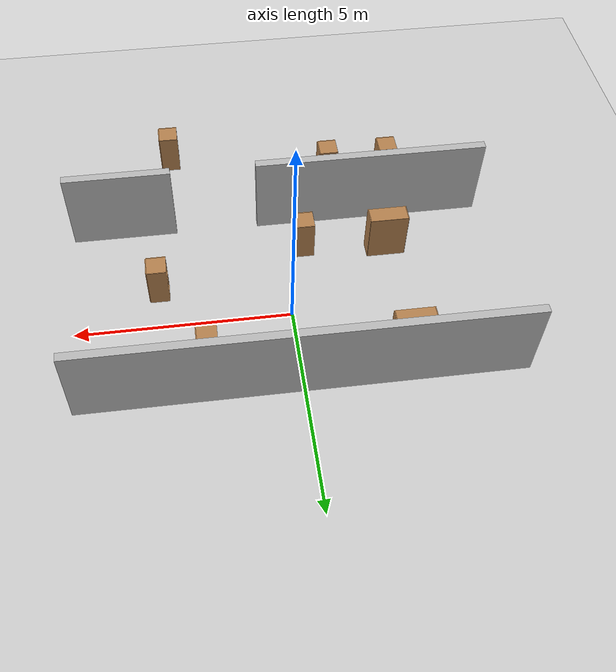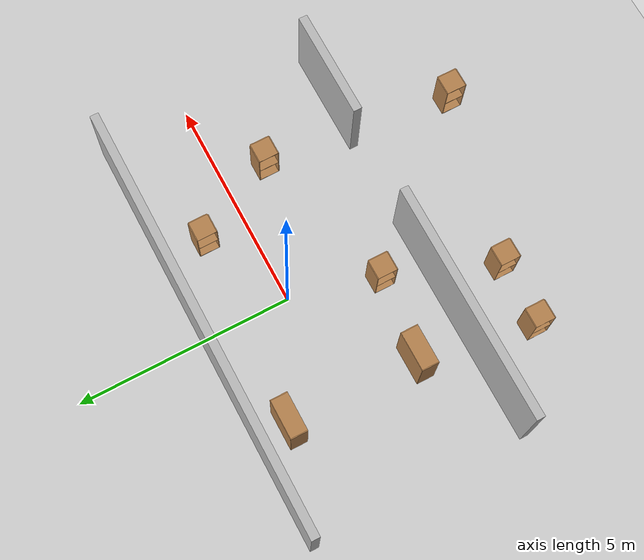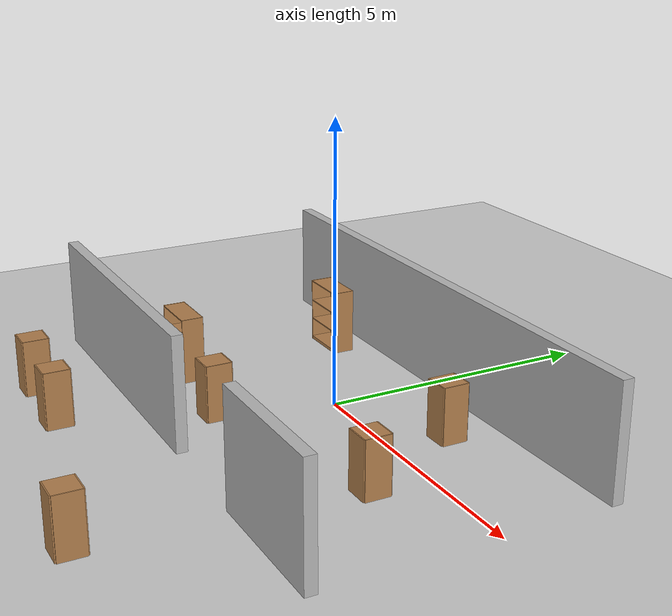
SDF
<sdf version="1.4">
 <world name="default">
  <model name="ground_plane">
   <static>1</static>
   <link name="link">
    <collision name="collision">
     <geometry>
      <plane><normal>0.000000 0.000000 1.000000</normal><size>100.000000 100.000000</size></plane>
     </geometry>
     <surface><friction><ode><mu>100.000000</mu><mu2>50.000000</mu2></ode></friction></surface>
    </collision>
    <visual name="visual">
     <cast_shadows>0</cast_shadows>
     <geometry>
      <plane><normal>0.000000 0.000000 1.000000</normal><size>100.000000 100.000000</size></plane>
     </geometry>
     <material>
      <script><uri>file://media/materials/scripts/gazebo.material</uri><name>Gazebo/Grey</name></script>
     </material>
    </visual>
    <velocity_decay><linear>0.000000</linear><angular>0.000000</angular></velocity_decay>
   </link>
  </model>
  <model name="wall_2_model">
   <pose>0.0 2.0 1.0 0.0 0.0 0.0</pose>
   <static>1</static>
   <link name="wall_2_body">
    <inertial>
     <mass>1.000000</mass>
     <inertia>
      <ixx>1.000000</ixx>
      <ixy>0.000000</ixy>
      <ixz>0.000000</ixz>
      <iyy>1.000000</iyy>
      <iyz>0.000000</iyz>
      <izz>1.000000</izz>
     </inertia>
    </inertial>
    <collision name="collision">
     <geometry><box><size>10.000000 0.200000 2.000000</size></box></geometry>
    </collision>
    <visual name="visual"><geometry><box><size>10.000000 0.200000 2.000000</size></box></geometry></visual>
    <velocity_decay><linear>0.000000</linear><angular>0.000000</angular></velocity_decay>
   </link>
  </model>
  <model name="wall_5_model">
   <pose>-2.25 -3.0 1.0 0.0 0.0 0.0</pose>
   <static>1</static>
   <link name="wall_5_body">
    <inertial>
     <mass>1.000000</mass>
     <inertia>
      <ixx>1.000000</ixx>
      <ixy>0.000000</ixy>
      <ixz>0.000000</ixz>
      <iyy>1.000000</iyy>
      <iyz>0.000000</iyz>
      <izz>1.000000</izz>
     </inertia>
    </inertial>
    <collision name="collision">
     <geometry><box><size>5.500000 0.200000 2.000000</size></box></geometry>
    </collision>
    <visual name="visual"><geometry><box><size>5.500000 0.200000 2.000000</size></box></geometry></visual>
    <velocity_decay><linear>0.000000</linear><angular>0.000000</angular></velocity_decay>
   </link>
  </model>
  <model name="wall_6_model">
   <pose>3.75 -3.0 1.0 0.0 0.0 0.0</pose>
   <static>1</static>
   <link name="wall_6_body">
    <inertial>
     <mass>1.000000</mass>
     <inertia>
      <ixx>1.000000</ixx>
      <ixy>0.000000</ixy>
      <ixz>0.000000</ixz>
      <iyy>1.000000</iyy>
      <iyz>0.000000</iyz>
      <izz>1.000000</izz>
     </inertia>
    </inertial>
    <collision name="collision">
     <geometry><box><size>2.500000 0.200000 2.000000</size></box></geometry>
    </collision>
    <visual name="visual"><geometry><box><size>2.500000 0.200000 2.000000</size></box></geometry></visual>
    <velocity_decay><linear>0.000000</linear><angular>0.000000</angular></velocity_decay>
   </link>
  </model>
  <model name="cabinet">
   <static>0</static>
   <link name="cabinet_bottom_plate">
    <inertial>
     <pose>0.000000 0.000000 -1.000000 0.000000 0.000000 0.000000</pose>
     <inertia>
      <ixx>2.050000</ixx>
      <ixy>0.000000</ixy>
      <ixz>0.000000</ixz>
      <iyy>2.050000</iyy>
      <iyz>0.000000</iyz>
      <izz>2.050000</izz>
     </inertia>
     <mass>25.000000</mass>
    </inertial>
    <collision name="cabinet_bottom_plate_geom">
     <pose>0.000000 0.000000 0.010000 0.000000 0.000000 0.000000</pose>
     <geometry><box><size>0.450000 0.450000 0.020000</size></box></geometry>
    </collision>
    <visual name="cabinet_bottom_plate_geom_visual">
     <pose>0.000000 0.000000 0.010000 0.000000 0.000000 0.000000</pose>
     <geometry><box><size>0.450000 0.450000 0.020000</size></box></geometry>
     <material>
      <script><uri>file://media/materials/scripts/gazebo.material</uri><name>Gazebo/Wood</name></script>
     </material>
    </visual>
    <collision name="cabinet_bottom_plate_geom_cabinet_back_plate">
     <pose>0.235000 0.000000 0.510000 0.000000 0.000000 0.000000</pose>
     <geometry><box><size>0.020000 0.450000 1.020000</size></box></geometry>
    </collision>
    <visual name="cabinet_bottom_plate_geom_cabinet_back_plate_visual">
     <pose>0.235000 0.000000 0.510000 0.000000 0.000000 0.000000</pose>
     <geometry><box><size>0.020000 0.450000 1.020000</size></box></geometry>
     <material>
      <script><uri>file://media/materials/scripts/gazebo.material</uri><name>Gazebo/Wood</name></script>
     </material>
    </visual>
    <collision name="cabinet_bottom_plate_geom_cabinet_left_plate">
     <pose>0.000000 0.235000 0.510000 0.000000 0.000000 0.000000</pose>
     <geometry><box><size>0.450000 0.020000 1.020000</size></box></geometry>
    </collision>
    <visual name="cabinet_bottom_plate_geom_cabinet_left_plate_visual">
     <pose>0.000000 0.235000 0.510000 0.000000 0.000000 0.000000</pose>
     <geometry><box><size>0.450000 0.020000 1.020000</size></box></geometry>
     <material>
      <script><uri>file://media/materials/scripts/gazebo.material</uri><name>Gazebo/Wood</name></script>
     </material>
    </visual>
    <collision name="cabinet_bottom_plate_geom_cabinet_middle_plate">
     <pose>0.000000 0.000000 0.510000 0.000000 0.000000 0.000000</pose>
     <geometry><box><size>0.450000 0.450000 0.020000</size></box></geometry>
    </collision>
    <visual name="cabinet_bottom_plate_geom_cabinet_middle_plate_visual">
     <pose>0.000000 0.000000 0.510000 0.000000 0.000000 0.000000</pose>
     <geometry><box><size>0.450000 0.450000 0.020000</size></box></geometry>
     <material>
      <script><uri>file://media/materials/scripts/gazebo.material</uri><name>Gazebo/Wood</name></script>
     </material>
    </visual>
    <collision name="cabinet_bottom_plate_geom_cabinet_right_plate">
     <pose>0.000000 -0.235000 0.510000 0.000000 0.000000 0.000000</pose>
     <geometry><box><size>0.450000 0.020000 1.020000</size></box></geometry>
    </collision>
    <visual name="cabinet_bottom_plate_geom_cabinet_right_plate_visual">
     <pose>0.000000 -0.235000 0.510000 0.000000 0.000000 0.000000</pose>
     <geometry><box><size>0.450000 0.020000 1.020000</size></box></geometry>
     <material>
      <script><uri>file://media/materials/scripts/gazebo.material</uri><name>Gazebo/Wood</name></script>
     </material>
    </visual>
    <collision name="cabinet_bottom_plate_geom_cabinet_top_plate">
     <pose>0.000000 0.000000 1.010000 0.000000 0.000000 0.000000</pose>
     <geometry><box><size>0.450000 0.450000 0.020000</size></box></geometry>
    </collision>
    <visual name="cabinet_bottom_plate_geom_cabinet_top_plate_visual">
     <pose>0.000000 0.000000 1.010000 0.000000 0.000000 0.000000</pose>
     <geometry><box><size>0.450000 0.450000 0.020000</size></box></geometry>
     <material>
      <script><uri>file://media/materials/scripts/gazebo.material</uri><name>Gazebo/Wood</name></script>
     </material>
    </visual>
    <velocity_decay><linear>0.000000</linear><angular>0.000000</angular></velocity_decay>
   </link>
   <pose>2.0 1.0 0.0 0.0 0.0 0.0</pose>
  </model>
  <model name="cabinet_0">
   <static>0</static>
   <link name="cabinet_bottom_plate">
    <inertial>
     <pose>0.000000 0.000000 -1.000000 0.000000 0.000000 0.000000</pose>
     <inertia>
      <ixx>2.050000</ixx>
      <ixy>0.000000</ixy>
      <ixz>0.000000</ixz>
      <iyy>2.050000</iyy>
      <iyz>0.000000</iyz>
      <izz>2.050000</izz>
     </inertia>
     <mass>25.000000</mass>
    </inertial>
    <collision name="cabinet_bottom_plate_geom">
     <pose>0.000000 0.000000 0.010000 0.000000 0.000000 0.000000</pose>
     <geometry><box><size>0.450000 0.450000 0.020000</size></box></geometry>
    </collision>
    <visual name="cabinet_bottom_plate_geom_visual">
     <pose>0.000000 0.000000 0.010000 0.000000 0.000000 0.000000</pose>
     <geometry><box><size>0.450000 0.450000 0.020000</size></box></geometry>
     <material>
      <script><uri>file://media/materials/scripts/gazebo.material</uri><name>Gazebo/Wood</name></script>
     </material>
    </visual>
    <collision name="cabinet_bottom_plate_geom_cabinet_back_plate">
     <pose>0.235000 0.000000 0.510000 0.000000 0.000000 0.000000</pose>
     <geometry><box><size>0.020000 0.450000 1.020000</size></box></geometry>
    </collision>
    <visual name="cabinet_bottom_plate_geom_cabinet_back_plate_visual">
     <pose>0.235000 0.000000 0.510000 0.000000 0.000000 0.000000</pose>
     <geometry><box><size>0.020000 0.450000 1.020000</size></box></geometry>
     <material>
      <script><uri>file://media/materials/scripts/gazebo.material</uri><name>Gazebo/Wood</name></script>
     </material>
    </visual>
    <collision name="cabinet_bottom_plate_geom_cabinet_left_plate">
     <pose>0.000000 0.235000 0.510000 0.000000 0.000000 0.000000</pose>
     <geometry><box><size>0.450000 0.020000 1.020000</size></box></geometry>
    </collision>
    <visual name="cabinet_bottom_plate_geom_cabinet_left_plate_visual">
     <pose>0.000000 0.235000 0.510000 0.000000 0.000000 0.000000</pose>
     <geometry><box><size>0.450000 0.020000 1.020000</size></box></geometry>
     <material>
      <script><uri>file://media/materials/scripts/gazebo.material</uri><name>Gazebo/Wood</name></script>
     </material>
    </visual>
    <collision name="cabinet_bottom_plate_geom_cabinet_middle_plate">
     <pose>0.000000 0.000000 0.510000 0.000000 0.000000 0.000000</pose>
     <geometry><box><size>0.450000 0.450000 0.020000</size></box></geometry>
    </collision>
    <visual name="cabinet_bottom_plate_geom_cabinet_middle_plate_visual">
     <pose>0.000000 0.000000 0.510000 0.000000 0.000000 0.000000</pose>
     <geometry><box><size>0.450000 0.450000 0.020000</size></box></geometry>
     <material>
      <script><uri>file://media/materials/scripts/gazebo.material</uri><name>Gazebo/Wood</name></script>
     </material>
    </visual>
    <collision name="cabinet_bottom_plate_geom_cabinet_right_plate">
     <pose>0.000000 -0.235000 0.510000 0.000000 0.000000 0.000000</pose>
     <geometry><box><size>0.450000 0.020000 1.020000</size></box></geometry>
    </collision>
    <visual name="cabinet_bottom_plate_geom_cabinet_right_plate_visual">
     <pose>0.000000 -0.235000 0.510000 0.000000 0.000000 0.000000</pose>
     <geometry><box><size>0.450000 0.020000 1.020000</size></box></geometry>
     <material>
      <script><uri>file://media/materials/scripts/gazebo.material</uri><name>Gazebo/Wood</name></script>
     </material>
    </visual>
    <collision name="cabinet_bottom_plate_geom_cabinet_top_plate">
     <pose>0.000000 0.000000 1.010000 0.000000 0.000000 0.000000</pose>
     <geometry><box><size>0.450000 0.450000 0.020000</size></box></geometry>
    </collision>
    <visual name="cabinet_bottom_plate_geom_cabinet_top_plate_visual">
     <pose>0.000000 0.000000 1.010000 0.000000 0.000000 0.000000</pose>
     <geometry><box><size>0.450000 0.450000 0.020000</size></box></geometry>
     <material>
      <script><uri>file://media/materials/scripts/gazebo.material</uri><name>Gazebo/Wood</name></script>
     </material>
    </visual>
    <velocity_decay><linear>0.000000</linear><angular>0.000000</angular></velocity_decay>
   </link>
   <pose>2.51573 -5.43949 0.0 0.0 0.0 0.0</pose>
  </model>
  <model name="bookshelf_0">
   <static>0</static>
   <link name="link">
    <inertial><mass>1.000000</mass></inertial>
    <collision name="back">
     <pose>0.000000 0.005000 0.600000 0.000000 0.000000 0.000000</pose>
     <geometry><box><size>0.900000 0.010000 1.200000</size></box></geometry>
    </collision>
    <visual name="visual1">
     <pose>0.000000 0.005000 0.600000 0.000000 0.000000 0.000000</pose>
     <geometry><box><size>0.900000 0.010000 1.200000</size></box></geometry>
     <material>
      <script><uri>file://media/materials/scripts/gazebo.material</uri><name>Gazebo/Wood</name></script>
     </material>
    </visual>
    <collision name="left_side">
     <pose>0.450000 -0.195000 0.600000 0.000000 0.000000 0.000000</pose>
     <geometry><box><size>0.020000 0.400000 1.200000</size></box></geometry>
    </collision>
    <visual name="visual2">
     <pose>0.450000 -0.195000 0.600000 0.000000 0.000000 0.000000</pose>
     <geometry><box><size>0.020000 0.400000 1.200000</size></box></geometry>
     <material>
      <script><uri>file://media/materials/scripts/gazebo.material</uri><name>Gazebo/Wood</name></script>
     </material>
    </visual>
    <collision name="right_side">
     <pose>-0.450000 -0.195000 0.600000 0.000000 0.000000 0.000000</pose>
     <geometry><box><size>0.020000 0.400000 1.200000</size></box></geometry>
    </collision>
    <visual name="visual3">
     <pose>-0.450000 -0.195000 0.600000 0.000000 0.000000 0.000000</pose>
     <geometry><box><size>0.020000 0.400000 1.200000</size></box></geometry>
     <material>
      <script><uri>file://media/materials/scripts/gazebo.material</uri><name>Gazebo/Wood</name></script>
     </material>
    </visual>
    <collision name="bottom">
     <pose>0.000000 -0.195000 0.030000 0.000000 0.000000 0.000000</pose>
     <geometry><box><size>0.880000 0.400000 0.060000</size></box></geometry>
    </collision>
    <visual name="visual4">
     <pose>0.000000 -0.195000 0.030000 0.000000 0.000000 0.000000</pose>
     <geometry><box><size>0.880000 0.400000 0.060000</size></box></geometry>
     <material>
      <script><uri>file://media/materials/scripts/gazebo.material</uri><name>Gazebo/Wood</name></script>
     </material>
    </visual>
    <collision name="top">
     <pose>0.000000 -0.195000 1.190000 0.000000 0.000000 0.000000</pose>
     <geometry><box><size>0.880000 0.400000 0.020000</size></box></geometry>
    </collision>
    <visual name="visual5">
     <pose>0.000000 -0.195000 1.190000 0.000000 0.000000 0.000000</pose>
     <geometry><box><size>0.880000 0.400000 0.020000</size></box></geometry>
     <material>
      <script><uri>file://media/materials/scripts/gazebo.material</uri><name>Gazebo/Wood</name></script>
     </material>
    </visual>
    <collision name="low_shelf">
     <pose>0.000000 -0.195000 0.430000 0.000000 0.000000 0.000000</pose>
     <geometry><box><size>0.880000 0.400000 0.020000</size></box></geometry>
    </collision>
    <visual name="visual6">
     <pose>0.000000 -0.195000 0.430000 0.000000 0.000000 0.000000</pose>
     <geometry><box><size>0.880000 0.400000 0.020000</size></box></geometry>
     <material>
      <script><uri>file://media/materials/scripts/gazebo.material</uri><name>Gazebo/Wood</name></script>
     </material>
    </visual>
    <collision name="high_shelf">
     <pose>0.000000 -0.195000 0.800000 0.000000 0.000000 0.000000</pose>
     <geometry><box><size>0.880000 0.400000 0.020000</size></box></geometry>
    </collision>
    <visual name="visual7">
     <pose>0.000000 -0.195000 0.800000 0.000000 0.000000 0.000000</pose>
     <geometry><box><size>0.880000 0.400000 0.020000</size></box></geometry>
     <material>
      <script><uri>file://media/materials/scripts/gazebo.material</uri><name>Gazebo/Wood</name></script>
     </material>
    </visual>
    <velocity_decay><linear>0.000000</linear><angular>0.000000</angular></velocity_decay>
   </link>
   <pose>-2.49657 -1.57894 0.0 0.0 0.0 0.0</pose>
  </model>
  <model name="bookshelf_1">
   <static>0</static>
   <link name="link">
    <inertial><mass>1.000000</mass></inertial>
    <collision name="back">
     <pose>0.000000 0.005000 0.600000 0.000000 0.000000 0.000000</pose>
     <geometry><box><size>0.900000 0.010000 1.200000</size></box></geometry>
    </collision>
    <visual name="visual1">
     <pose>0.000000 0.005000 0.600000 0.000000 0.000000 0.000000</pose>
     <geometry><box><size>0.900000 0.010000 1.200000</size></box></geometry>
     <material>
      <script><uri>file://media/materials/scripts/gazebo.material</uri><name>Gazebo/Wood</name></script>
     </material>
    </visual>
    <collision name="left_side">
     <pose>0.450000 -0.195000 0.600000 0.000000 0.000000 0.000000</pose>
     <geometry><box><size>0.020000 0.400000 1.200000</size></box></geometry>
    </collision>
    <visual name="visual2">
     <pose>0.450000 -0.195000 0.600000 0.000000 0.000000 0.000000</pose>
     <geometry><box><size>0.020000 0.400000 1.200000</size></box></geometry>
     <material>
      <script><uri>file://media/materials/scripts/gazebo.material</uri><name>Gazebo/Wood</name></script>
     </material>
    </visual>
    <collision name="right_side">
     <pose>-0.450000 -0.195000 0.600000 0.000000 0.000000 0.000000</pose>
     <geometry><box><size>0.020000 0.400000 1.200000</size></box></geometry>
    </collision>
    <visual name="visual3">
     <pose>-0.450000 -0.195000 0.600000 0.000000 0.000000 0.000000</pose>
     <geometry><box><size>0.020000 0.400000 1.200000</size></box></geometry>
     <material>
      <script><uri>file://media/materials/scripts/gazebo.material</uri><name>Gazebo/Wood</name></script>
     </material>
    </visual>
    <collision name="bottom">
     <pose>0.000000 -0.195000 0.030000 0.000000 0.000000 0.000000</pose>
     <geometry><box><size>0.880000 0.400000 0.060000</size></box></geometry>
    </collision>
    <visual name="visual4">
     <pose>0.000000 -0.195000 0.030000 0.000000 0.000000 0.000000</pose>
     <geometry><box><size>0.880000 0.400000 0.060000</size></box></geometry>
     <material>
      <script><uri>file://media/materials/scripts/gazebo.material</uri><name>Gazebo/Wood</name></script>
     </material>
    </visual>
    <collision name="top">
     <pose>0.000000 -0.195000 1.190000 0.000000 0.000000 0.000000</pose>
     <geometry><box><size>0.880000 0.400000 0.020000</size></box></geometry>
    </collision>
    <visual name="visual5">
     <pose>0.000000 -0.195000 1.190000 0.000000 0.000000 0.000000</pose>
     <geometry><box><size>0.880000 0.400000 0.020000</size></box></geometry>
     <material>
      <script><uri>file://media/materials/scripts/gazebo.material</uri><name>Gazebo/Wood</name></script>
     </material>
    </visual>
    <collision name="low_shelf">
     <pose>0.000000 -0.195000 0.430000 0.000000 0.000000 0.000000</pose>
     <geometry><box><size>0.880000 0.400000 0.020000</size></box></geometry>
    </collision>
    <visual name="visual6">
     <pose>0.000000 -0.195000 0.430000 0.000000 0.000000 0.000000</pose>
     <geometry><box><size>0.880000 0.400000 0.020000</size></box></geometry>
     <material>
      <script><uri>file://media/materials/scripts/gazebo.material</uri><name>Gazebo/Wood</name></script>
     </material>
    </visual>
    <collision name="high_shelf">
     <pose>0.000000 -0.195000 0.800000 0.000000 0.000000 0.000000</pose>
     <geometry><box><size>0.880000 0.400000 0.020000</size></box></geometry>
    </collision>
    <visual name="visual7">
     <pose>0.000000 -0.195000 0.800000 0.000000 0.000000 0.000000</pose>
     <geometry><box><size>0.880000 0.400000 0.020000</size></box></geometry>
     <material>
      <script><uri>file://media/materials/scripts/gazebo.material</uri><name>Gazebo/Wood</name></script>
     </material>
    </visual>
    <velocity_decay><linear>0.000000</linear><angular>0.000000</angular></velocity_decay>
   </link>
   <pose>-2.49816 1.46785 0.0 0.0 0.0 0.0</pose>
  </model>
  <model name="cabinet_1">
   <static>0</static>
   <link name="cabinet_bottom_plate">
    <inertial>
     <pose>0.000000 0.000000 -1.000000 0.000000 0.000000 0.000000</pose>
     <inertia>
      <ixx>2.050000</ixx>
      <ixy>0.000000</ixy>
      <ixz>0.000000</ixz>
      <iyy>2.050000</iyy>
      <iyz>0.000000</iyz>
      <izz>2.050000</izz>
     </inertia>
     <mass>25.000000</mass>
    </inertial>
    <collision name="cabinet_bottom_plate_geom">
     <pose>0.000000 0.000000 0.010000 0.000000 0.000000 0.000000</pose>
     <geometry><box><size>0.450000 0.450000 0.020000</size></box></geometry>
    </collision>
    <visual name="cabinet_bottom_plate_geom_visual">
     <pose>0.000000 0.000000 0.010000 0.000000 0.000000 0.000000</pose>
     <geometry><box><size>0.450000 0.450000 0.020000</size></box></geometry>
     <material>
      <script><uri>file://media/materials/scripts/gazebo.material</uri><name>Gazebo/Wood</name></script>
     </material>
    </visual>
    <collision name="cabinet_bottom_plate_geom_cabinet_back_plate">
     <pose>0.235000 0.000000 0.510000 0.000000 0.000000 0.000000</pose>
     <geometry><box><size>0.020000 0.450000 1.020000</size></box></geometry>
    </collision>
    <visual name="cabinet_bottom_plate_geom_cabinet_back_plate_visual">
     <pose>0.235000 0.000000 0.510000 0.000000 0.000000 0.000000</pose>
     <geometry><box><size>0.020000 0.450000 1.020000</size></box></geometry>
     <material>
      <script><uri>file://media/materials/scripts/gazebo.material</uri><name>Gazebo/Wood</name></script>
     </material>
    </visual>
    <collision name="cabinet_bottom_plate_geom_cabinet_left_plate">
     <pose>0.000000 0.235000 0.510000 0.000000 0.000000 0.000000</pose>
     <geometry><box><size>0.450000 0.020000 1.020000</size></box></geometry>
    </collision>
    <visual name="cabinet_bottom_plate_geom_cabinet_left_plate_visual">
     <pose>0.000000 0.235000 0.510000 0.000000 0.000000 0.000000</pose>
     <geometry><box><size>0.450000 0.020000 1.020000</size></box></geometry>
     <material>
      <script><uri>file://media/materials/scripts/gazebo.material</uri><name>Gazebo/Wood</name></script>
     </material>
    </visual>
    <collision name="cabinet_bottom_plate_geom_cabinet_middle_plate">
     <pose>0.000000 0.000000 0.510000 0.000000 0.000000 0.000000</pose>
     <geometry><box><size>0.450000 0.450000 0.020000</size></box></geometry>
    </collision>
    <visual name="cabinet_bottom_plate_geom_cabinet_middle_plate_visual">
     <pose>0.000000 0.000000 0.510000 0.000000 0.000000 0.000000</pose>
     <geometry><box><size>0.450000 0.450000 0.020000</size></box></geometry>
     <material>
      <script><uri>file://media/materials/scripts/gazebo.material</uri><name>Gazebo/Wood</name></script>
     </material>
    </visual>
    <collision name="cabinet_bottom_plate_geom_cabinet_right_plate">
     <pose>0.000000 -0.235000 0.510000 0.000000 0.000000 0.000000</pose>
     <geometry><box><size>0.450000 0.020000 1.020000</size></box></geometry>
    </collision>
    <visual name="cabinet_bottom_plate_geom_cabinet_right_plate_visual">
     <pose>0.000000 -0.235000 0.510000 0.000000 0.000000 0.000000</pose>
     <geometry><box><size>0.450000 0.020000 1.020000</size></box></geometry>
     <material>
      <script><uri>file://media/materials/scripts/gazebo.material</uri><name>Gazebo/Wood</name></script>
     </material>
    </visual>
    <collision name="cabinet_bottom_plate_geom_cabinet_top_plate">
     <pose>0.000000 0.000000 1.010000 0.000000 0.000000 0.000000</pose>
     <geometry><box><size>0.450000 0.450000 0.020000</size></box></geometry>
    </collision>
    <visual name="cabinet_bottom_plate_geom_cabinet_top_plate_visual">
     <pose>0.000000 0.000000 1.010000 0.000000 0.000000 0.000000</pose>
     <geometry><box><size>0.450000 0.450000 0.020000</size></box></geometry>
     <material>
      <script><uri>file://media/materials/scripts/gazebo.material</uri><name>Gazebo/Wood</name></script>
     </material>
    </visual>
    <velocity_decay><linear>0.000000</linear><angular>0.000000</angular></velocity_decay>
   </link>
   <pose>-3.0 -4.40005 0.0 0.0 0.0 0.0</pose>
  </model>
  <model name="cabinet_2">
   <static>0</static>
   <link name="cabinet_bottom_plate">
    <inertial>
     <pose>0.000000 0.000000 -1.000000 0.000000 0.000000 0.000000</pose>
     <inertia>
      <ixx>2.050000</ixx>
      <ixy>0.000000</ixy>
      <ixz>0.000000</ixz>
      <iyy>2.050000</iyy>
      <iyz>0.000000</iyz>
      <izz>2.050000</izz>
     </inertia>
     <mass>25.000000</mass>
    </inertial>
    <collision name="cabinet_bottom_plate_geom">
     <pose>0.000000 0.000000 0.010000 0.000000 0.000000 0.000000</pose>
     <geometry><box><size>0.450000 0.450000 0.020000</size></box></geometry>
    </collision>
    <visual name="cabinet_bottom_plate_geom_visual">
     <pose>0.000000 0.000000 0.010000 0.000000 0.000000 0.000000</pose>
     <geometry><box><size>0.450000 0.450000 0.020000</size></box></geometry>
     <material>
      <script><uri>file://media/materials/scripts/gazebo.material</uri><name>Gazebo/Wood</name></script>
     </material>
    </visual>
    <collision name="cabinet_bottom_plate_geom_cabinet_back_plate">
     <pose>0.235000 0.000000 0.510000 0.000000 0.000000 0.000000</pose>
     <geometry><box><size>0.020000 0.450000 1.020000</size></box></geometry>
    </collision>
    <visual name="cabinet_bottom_plate_geom_cabinet_back_plate_visual">
     <pose>0.235000 0.000000 0.510000 0.000000 0.000000 0.000000</pose>
     <geometry><box><size>0.020000 0.450000 1.020000</size></box></geometry>
     <material>
      <script><uri>file://media/materials/scripts/gazebo.material</uri><name>Gazebo/Wood</name></script>
     </material>
    </visual>
    <collision name="cabinet_bottom_plate_geom_cabinet_left_plate">
     <pose>0.000000 0.235000 0.510000 0.000000 0.000000 0.000000</pose>
     <geometry><box><size>0.450000 0.020000 1.020000</size></box></geometry>
    </collision>
    <visual name="cabinet_bottom_plate_geom_cabinet_left_plate_visual">
     <pose>0.000000 0.235000 0.510000 0.000000 0.000000 0.000000</pose>
     <geometry><box><size>0.450000 0.020000 1.020000</size></box></geometry>
     <material>
      <script><uri>file://media/materials/scripts/gazebo.material</uri><name>Gazebo/Wood</name></script>
     </material>
    </visual>
    <collision name="cabinet_bottom_plate_geom_cabinet_middle_plate">
     <pose>0.000000 0.000000 0.510000 0.000000 0.000000 0.000000</pose>
     <geometry><box><size>0.450000 0.450000 0.020000</size></box></geometry>
    </collision>
    <visual name="cabinet_bottom_plate_geom_cabinet_middle_plate_visual">
     <pose>0.000000 0.000000 0.510000 0.000000 0.000000 0.000000</pose>
     <geometry><box><size>0.450000 0.450000 0.020000</size></box></geometry>
     <material>
      <script><uri>file://media/materials/scripts/gazebo.material</uri><name>Gazebo/Wood</name></script>
     </material>
    </visual>
    <collision name="cabinet_bottom_plate_geom_cabinet_right_plate">
     <pose>0.000000 -0.235000 0.510000 0.000000 0.000000 0.000000</pose>
     <geometry><box><size>0.450000 0.020000 1.020000</size></box></geometry>
    </collision>
    <visual name="cabinet_bottom_plate_geom_cabinet_right_plate_visual">
     <pose>0.000000 -0.235000 0.510000 0.000000 0.000000 0.000000</pose>
     <geometry><box><size>0.450000 0.020000 1.020000</size></box></geometry>
     <material>
      <script><uri>file://media/materials/scripts/gazebo.material</uri><name>Gazebo/Wood</name></script>
     </material>
    </visual>
    <collision name="cabinet_bottom_plate_geom_cabinet_top_plate">
     <pose>0.000000 0.000000 1.010000 0.000000 0.000000 0.000000</pose>
     <geometry><box><size>0.450000 0.450000 0.020000</size></box></geometry>
    </collision>
    <visual name="cabinet_bottom_plate_geom_cabinet_top_plate_visual">
     <pose>0.000000 0.000000 1.010000 0.000000 0.000000 0.000000</pose>
     <geometry><box><size>0.450000 0.450000 0.020000</size></box></geometry>
     <material>
      <script><uri>file://media/materials/scripts/gazebo.material</uri><name>Gazebo/Wood</name></script>
     </material>
    </visual>
    <velocity_decay><linear>0.000000</linear><angular>0.000000</angular></velocity_decay>
   </link>
   <pose>-1.49183 -4.45622 0.0 0.0 0.0 0.0</pose>
  </model>
  <model name="cabinet_3">
   <static>0</static>
   <link name="cabinet_bottom_plate">
    <inertial>
     <pose>0.000000 0.000000 -1.000000 0.000000 0.000000 0.000000</pose>
     <inertia>
      <ixx>2.050000</ixx>
      <ixy>0.000000</ixy>
      <ixz>0.000000</ixz>
      <iyy>2.050000</iyy>
      <iyz>0.000000</iyz>
      <izz>2.050000</izz>
     </inertia>
     <mass>25.000000</mass>
    </inertial>
    <collision name="cabinet_bottom_plate_geom">
     <pose>0.000000 0.000000 0.010000 0.000000 0.000000 0.000000</pose>
     <geometry><box><size>0.450000 0.450000 0.020000</size></box></geometry>
    </collision>
    <visual name="cabinet_bottom_plate_geom_visual">
     <pose>0.000000 0.000000 0.010000 0.000000 0.000000 0.000000</pose>
     <geometry><box><size>0.450000 0.450000 0.020000</size></box></geometry>
     <material>
      <script><uri>file://media/materials/scripts/gazebo.material</uri><name>Gazebo/Wood</name></script>
     </material>
    </visual>
    <collision name="cabinet_bottom_plate_geom_cabinet_back_plate">
     <pose>0.235000 0.000000 0.510000 0.000000 0.000000 0.000000</pose>
     <geometry><box><size>0.020000 0.450000 1.020000</size></box></geometry>
    </collision>
    <visual name="cabinet_bottom_plate_geom_cabinet_back_plate_visual">
     <pose>0.235000 0.000000 0.510000 0.000000 0.000000 0.000000</pose>
     <geometry><box><size>0.020000 0.450000 1.020000</size></box></geometry>
     <material>
      <script><uri>file://media/materials/scripts/gazebo.material</uri><name>Gazebo/Wood</name></script>
     </material>
    </visual>
    <collision name="cabinet_bottom_plate_geom_cabinet_left_plate">
     <pose>0.000000 0.235000 0.510000 0.000000 0.000000 0.000000</pose>
     <geometry><box><size>0.450000 0.020000 1.020000</size></box></geometry>
    </collision>
    <visual name="cabinet_bottom_plate_geom_cabinet_left_plate_visual">
     <pose>0.000000 0.235000 0.510000 0.000000 0.000000 0.000000</pose>
     <geometry><box><size>0.450000 0.020000 1.020000</size></box></geometry>
     <material>
      <script><uri>file://media/materials/scripts/gazebo.material</uri><name>Gazebo/Wood</name></script>
     </material>
    </visual>
    <collision name="cabinet_bottom_plate_geom_cabinet_middle_plate">
     <pose>0.000000 0.000000 0.510000 0.000000 0.000000 0.000000</pose>
     <geometry><box><size>0.450000 0.450000 0.020000</size></box></geometry>
    </collision>
    <visual name="cabinet_bottom_plate_geom_cabinet_middle_plate_visual">
     <pose>0.000000 0.000000 0.510000 0.000000 0.000000 0.000000</pose>
     <geometry><box><size>0.450000 0.450000 0.020000</size></box></geometry>
     <material>
      <script><uri>file://media/materials/scripts/gazebo.material</uri><name>Gazebo/Wood</name></script>
     </material>
    </visual>
    <collision name="cabinet_bottom_plate_geom_cabinet_right_plate">
     <pose>0.000000 -0.235000 0.510000 0.000000 0.000000 0.000000</pose>
     <geometry><box><size>0.450000 0.020000 1.020000</size></box></geometry>
    </collision>
    <visual name="cabinet_bottom_plate_geom_cabinet_right_plate_visual">
     <pose>0.000000 -0.235000 0.510000 0.000000 0.000000 0.000000</pose>
     <geometry><box><size>0.450000 0.020000 1.020000</size></box></geometry>
     <material>
      <script><uri>file://media/materials/scripts/gazebo.material</uri><name>Gazebo/Wood</name></script>
     </material>
    </visual>
    <collision name="cabinet_bottom_plate_geom_cabinet_top_plate">
     <pose>0.000000 0.000000 1.010000 0.000000 0.000000 0.000000</pose>
     <geometry><box><size>0.450000 0.450000 0.020000</size></box></geometry>
    </collision>
    <visual name="cabinet_bottom_plate_geom_cabinet_top_plate_visual">
     <pose>0.000000 0.000000 1.010000 0.000000 0.000000 0.000000</pose>
     <geometry><box><size>0.450000 0.450000 0.020000</size></box></geometry>
     <material>
      <script><uri>file://media/materials/scripts/gazebo.material</uri><name>Gazebo/Wood</name></script>
     </material>
    </visual>
    <velocity_decay><linear>0.000000</linear><angular>0.000000</angular></velocity_decay>
   </link>
   <pose>3.0 -1.0 0.0 0.0 0.0 0.0</pose>
  </model>
  <model name="cabinet_4">
   <static>0</static>
   <link name="cabinet_bottom_plate">
    <inertial>
     <pose>0.000000 0.000000 -1.000000 0.000000 0.000000 0.000000</pose>
     <inertia>
      <ixx>2.050000</ixx>
      <ixy>0.000000</ixy>
      <ixz>0.000000</ixz>
      <iyy>2.050000</iyy>
      <iyz>0.000000</iyz>
      <izz>2.050000</izz>
     </inertia>
     <mass>25.000000</mass>
    </inertial>
    <collision name="cabinet_bottom_plate_geom">
     <pose>0.000000 0.000000 0.010000 0.000000 0.000000 0.000000</pose>
     <geometry><box><size>0.450000 0.450000 0.020000</size></box></geometry>
    </collision>
    <visual name="cabinet_bottom_plate_geom_visual">
     <pose>0.000000 0.000000 0.010000 0.000000 0.000000 0.000000</pose>
     <geometry><box><size>0.450000 0.450000 0.020000</size></box></geometry>
     <material>
      <script><uri>file://media/materials/scripts/gazebo.material</uri><name>Gazebo/Wood</name></script>
     </material>
    </visual>
    <collision name="cabinet_bottom_plate_geom_cabinet_back_plate">
     <pose>0.235000 0.000000 0.510000 0.000000 0.000000 0.000000</pose>
     <geometry><box><size>0.020000 0.450000 1.020000</size></box></geometry>
    </collision>
    <visual name="cabinet_bottom_plate_geom_cabinet_back_plate_visual">
     <pose>0.235000 0.000000 0.510000 0.000000 0.000000 0.000000</pose>
     <geometry><box><size>0.020000 0.450000 1.020000</size></box></geometry>
     <material>
      <script><uri>file://media/materials/scripts/gazebo.material</uri><name>Gazebo/Wood</name></script>
     </material>
    </visual>
    <collision name="cabinet_bottom_plate_geom_cabinet_left_plate">
     <pose>0.000000 0.235000 0.510000 0.000000 0.000000 0.000000</pose>
     <geometry><box><size>0.450000 0.020000 1.020000</size></box></geometry>
    </collision>
    <visual name="cabinet_bottom_plate_geom_cabinet_left_plate_visual">
     <pose>0.000000 0.235000 0.510000 0.000000 0.000000 0.000000</pose>
     <geometry><box><size>0.450000 0.020000 1.020000</size></box></geometry>
     <material>
      <script><uri>file://media/materials/scripts/gazebo.material</uri><name>Gazebo/Wood</name></script>
     </material>
    </visual>
    <collision name="cabinet_bottom_plate_geom_cabinet_middle_plate">
     <pose>0.000000 0.000000 0.510000 0.000000 0.000000 0.000000</pose>
     <geometry><box><size>0.450000 0.450000 0.020000</size></box></geometry>
    </collision>
    <visual name="cabinet_bottom_plate_geom_cabinet_middle_plate_visual">
     <pose>0.000000 0.000000 0.510000 0.000000 0.000000 0.000000</pose>
     <geometry><box><size>0.450000 0.450000 0.020000</size></box></geometry>
     <material>
      <script><uri>file://media/materials/scripts/gazebo.material</uri><name>Gazebo/Wood</name></script>
     </material>
    </visual>
    <collision name="cabinet_bottom_plate_geom_cabinet_right_plate">
     <pose>0.000000 -0.235000 0.510000 0.000000 0.000000 0.000000</pose>
     <geometry><box><size>0.450000 0.020000 1.020000</size></box></geometry>
    </collision>
    <visual name="cabinet_bottom_plate_geom_cabinet_right_plate_visual">
     <pose>0.000000 -0.235000 0.510000 0.000000 0.000000 0.000000</pose>
     <geometry><box><size>0.450000 0.020000 1.020000</size></box></geometry>
     <material>
      <script><uri>file://media/materials/scripts/gazebo.material</uri><name>Gazebo/Wood</name></script>
     </material>
    </visual>
    <collision name="cabinet_bottom_plate_geom_cabinet_top_plate">
     <pose>0.000000 0.000000 1.010000 0.000000 0.000000 0.000000</pose>
     <geometry><box><size>0.450000 0.450000 0.020000</size></box></geometry>
    </collision>
    <visual name="cabinet_bottom_plate_geom_cabinet_top_plate_visual">
     <pose>0.000000 0.000000 1.010000 0.000000 0.000000 0.000000</pose>
     <geometry><box><size>0.450000 0.450000 0.020000</size></box></geometry>
     <material>
      <script><uri>file://media/materials/scripts/gazebo.material</uri><name>Gazebo/Wood</name></script>
     </material>
    </visual>
    <velocity_decay><linear>0.000000</linear><angular>0.000000</angular></velocity_decay>
   </link>
   <pose>-0.537023 -2.0 0.0 0.0 0.0 0.0</pose>
  </model>
 </world>
</sdf>
